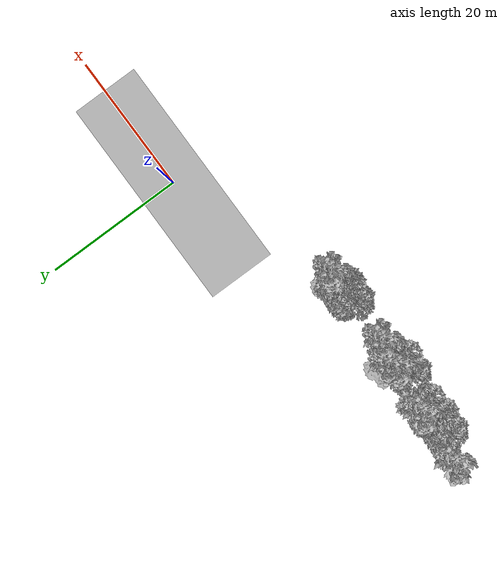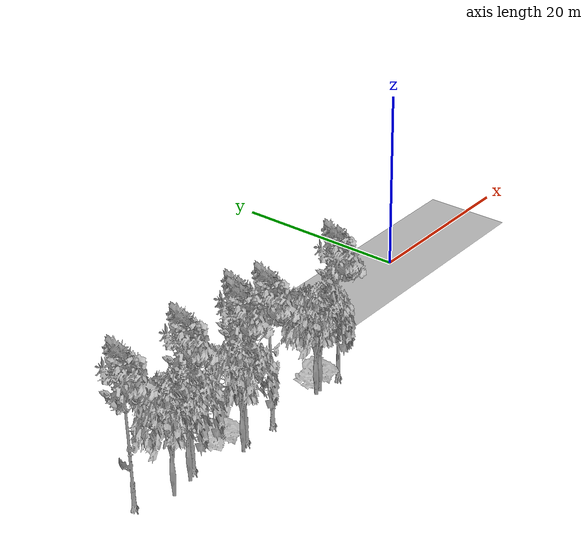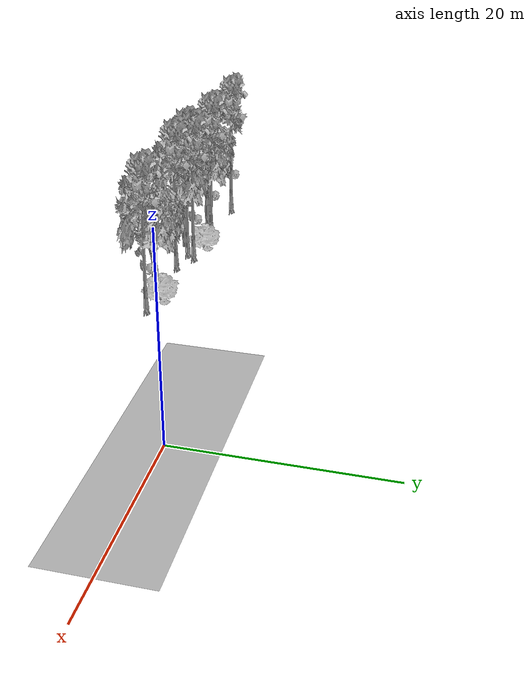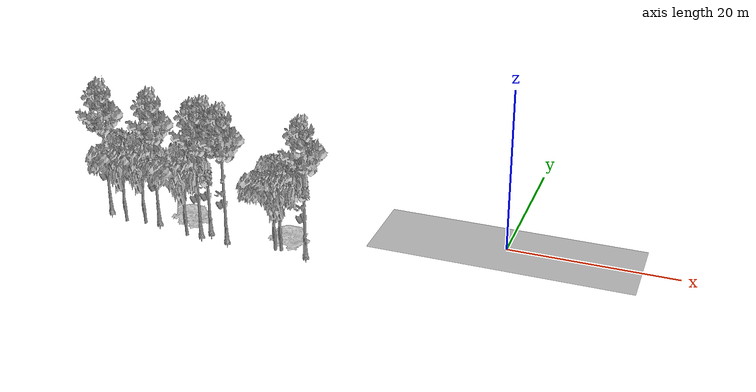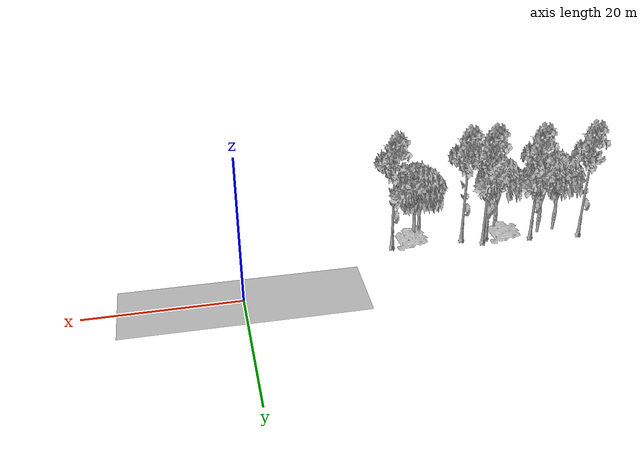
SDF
<sdf version="1.7">
 <world name="default">
  <model name="ground_plane">
   <static>1</static>
   <link name="link">
    <collision name="collision">
     <pose>-50 0 0 0 -0 0</pose>
     <geometry><plane><normal>0 0 1</normal><size>100 100</size></plane></geometry>
     <surface><contact><ode><min_depth>0.01</min_depth><max_vel>0</max_vel></ode></contact></surface>
    </collision>
    <visual name="grass">
     <cast_shadows>0</cast_shadows>
     <geometry>
      <mesh>
       <scale>0.5814285714285714 0.18142857142857144 0.1</scale>
       <uri>file://grass_plane/meshes/grass_plane.dae</uri>
      </mesh>
     </geometry>
    </visual>
   </link>
  </model>
  <model name="Tree 0">
   <static>1</static>
   <pose>-36.85921534294585 -9.722802604037224 0 1.57079 -0 0</pose>
   <link name="link">
    <collision name="collision">
     <geometry><mesh><scale>3.5 5 3.5</scale><uri>model://tree_2/meshes/tree_2.obj</uri></mesh></geometry>
    </collision>
    <visual name="visual">
     <geometry><mesh><scale>3.5 5 3.5</scale><uri>model://tree_2/meshes/tree_2.obj</uri></mesh></geometry>
    </visual>
   </link>
  </model>
  <model name="Tree 24">
   <static>1</static>
   <pose>-34.49805732719764 -7.907337376200249 0 1.57079 -0 0</pose>
   <link name="link">
    <collision name="collision">
     <geometry><mesh><scale>3.5 5 3.5</scale><uri>model://tree_9/meshes/tree_9.obj</uri></mesh></geometry>
    </collision>
    <visual name="visual">
     <geometry><mesh><scale>3.5 5 3.5</scale><uri>model://tree_9/meshes/tree_9.obj</uri></mesh></geometry>
    </visual>
   </link>
  </model>
  <model name="Tree 29">
   <static>1</static>
   <pose>-43.06568798121454 -8.74824961784848 0 1.57079 -0 0</pose>
   <link name="link">
    <collision name="collision">
     <geometry><mesh><scale>3.5 5 3.5</scale><uri>model://tree_2/meshes/tree_2.obj</uri></mesh></geometry>
    </collision>
    <visual name="visual">
     <geometry><mesh><scale>3.5 5 3.5</scale><uri>model://tree_2/meshes/tree_2.obj</uri></mesh></geometry>
    </visual>
   </link>
  </model>
  <model name="Tree 33">
   <static>1</static>
   <pose>-41.56478956497732 -7.85211631656595 0 1.57079 -0 0</pose>
   <link name="link">
    <collision name="collision">
     <geometry><mesh><scale>3.5 5 3.5</scale><uri>model://tree_9/meshes/tree_9.obj</uri></mesh></geometry>
    </collision>
    <visual name="visual">
     <geometry><mesh><scale>3.5 5 3.5</scale><uri>model://tree_9/meshes/tree_9.obj</uri></mesh></geometry>
    </visual>
   </link>
  </model>
  <model name="Tree 85">
   <static>1</static>
   <pose>-25.45974505619009 -9.310770586358183 0 1.57079 -0 0</pose>
   <link name="link">
    <collision name="collision">
     <geometry><mesh><scale>3.5 5 3.5</scale><uri>model://tree_2/meshes/tree_2.obj</uri></mesh></geometry>
    </collision>
    <visual name="visual">
     <geometry><mesh><scale>3.5 5 3.5</scale><uri>model://tree_2/meshes/tree_2.obj</uri></mesh></geometry>
    </visual>
   </link>
  </model>
  <model name="Tree 170">
   <static>1</static>
   <pose>-24.757318541000114 -9.20619147035977 0 1.57079 -0 0</pose>
   <link name="link">
    <collision name="collision">
     <geometry><mesh><scale>3.5 5 3.5</scale><uri>model://tree_2/meshes/tree_2.obj</uri></mesh></geometry>
    </collision>
    <visual name="visual">
     <geometry><mesh><scale>3.5 5 3.5</scale><uri>model://tree_2/meshes/tree_2.obj</uri></mesh></geometry>
    </visual>
   </link>
  </model>
  <model name="Tree 178">
   <static>1</static>
   <pose>-31.76203084812607 -9.094546068094823 0 1.57079 -0 0</pose>
   <link name="link">
    <collision name="collision">
     <geometry><mesh><scale>3.5 5 3.5</scale><uri>model://tree_9/meshes/tree_9.obj</uri></mesh></geometry>
    </collision>
    <visual name="visual">
     <geometry><mesh><scale>3.5 5 3.5</scale><uri>model://tree_9/meshes/tree_9.obj</uri></mesh></geometry>
    </visual>
   </link>
  </model>
  <model name="Tree 188">
   <static>1</static>
   <pose>-37.26835964369315 -7.54421801578909 0 1.57079 -0 0</pose>
   <link name="link">
    <collision name="collision">
     <geometry><mesh><scale>3 2 3</scale><uri>model://tree_3/meshes/tree_3.obj</uri></mesh></geometry>
    </collision>
    <visual name="visual">
     <geometry><mesh><scale>3 2 3</scale><uri>model://tree_3/meshes/tree_3.obj</uri></mesh></geometry>
    </visual>
   </link>
  </model>
  <model name="Tree 202">
   <static>1</static>
   <pose>-21.616597520481335 -9.117224641790482 0 1.57079 -0 0</pose>
   <link name="link">
    <collision name="collision">
     <geometry><mesh><scale>3.5 5 3.5</scale><uri>model://tree_9/meshes/tree_9.obj</uri></mesh></geometry>
    </collision>
    <visual name="visual">
     <geometry><mesh><scale>3.5 5 3.5</scale><uri>model://tree_9/meshes/tree_9.obj</uri></mesh></geometry>
    </visual>
   </link>
  </model>
  <model name="Tree 211">
   <static>1</static>
   <pose>-35.314386877919105 -8.85837944886709 0 1.57079 -0 0</pose>
   <link name="link">
    <collision name="collision">
     <geometry><mesh><scale>3.5 5 3.5</scale><uri>model://tree_9/meshes/tree_9.obj</uri></mesh></geometry>
    </collision>
    <visual name="visual">
     <geometry><mesh><scale>3.5 5 3.5</scale><uri>model://tree_9/meshes/tree_9.obj</uri></mesh></geometry>
    </visual>
   </link>
  </model>
  <model name="Tree 230">
   <static>1</static>
   <pose>-48.670007779315725 -7.270073094284314 0 1.57079 -0 0</pose>
   <link name="link">
    <collision name="collision">
     <geometry><mesh><scale>3.5 5 3.5</scale><uri>model://tree_9/meshes/tree_9.obj</uri></mesh></geometry>
    </collision>
    <visual name="visual">
     <geometry><mesh><scale>3.5 5 3.5</scale><uri>model://tree_9/meshes/tree_9.obj</uri></mesh></geometry>
    </visual>
   </link>
  </model>
  <model name="Tree 253">
   <static>1</static>
   <pose>-45.51622068406796 -9.052919188726204 0 1.57079 -0 0</pose>
   <link name="link">
    <collision name="collision">
     <geometry><mesh><scale>3.5 5 3.5</scale><uri>model://tree_2/meshes/tree_2.obj</uri></mesh></geometry>
    </collision>
    <visual name="visual">
     <geometry><mesh><scale>3.5 5 3.5</scale><uri>model://tree_2/meshes/tree_2.obj</uri></mesh></geometry>
    </visual>
   </link>
  </model>
  <model name="Tree 296">
   <static>1</static>
   <pose>-24.05423679109594 -8.37999846236486 0 1.57079 -0 0</pose>
   <link name="link">
    <collision name="collision">
     <geometry><mesh><scale>3 2 3</scale><uri>model://tree_3/meshes/tree_3.obj</uri></mesh></geometry>
    </collision>
    <visual name="visual">
     <geometry><mesh><scale>3 2 3</scale><uri>model://tree_3/meshes/tree_3.obj</uri></mesh></geometry>
    </visual>
   </link>
  </model>
 </world>
</sdf>
